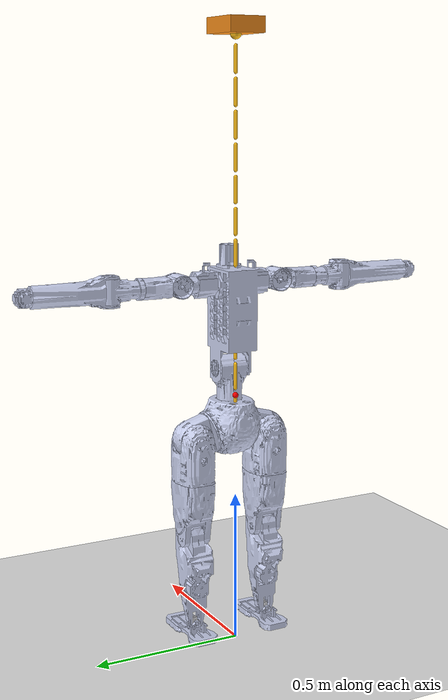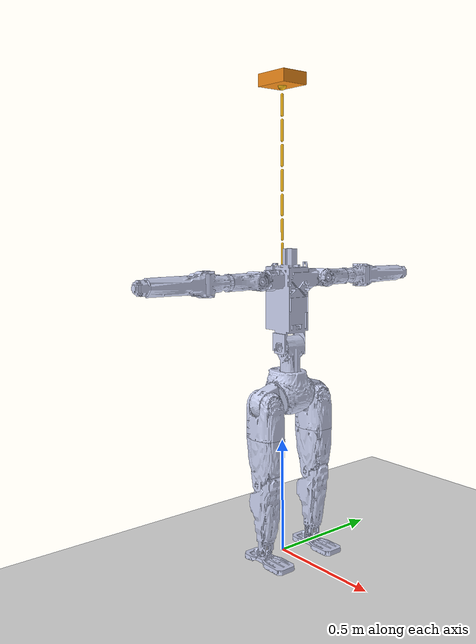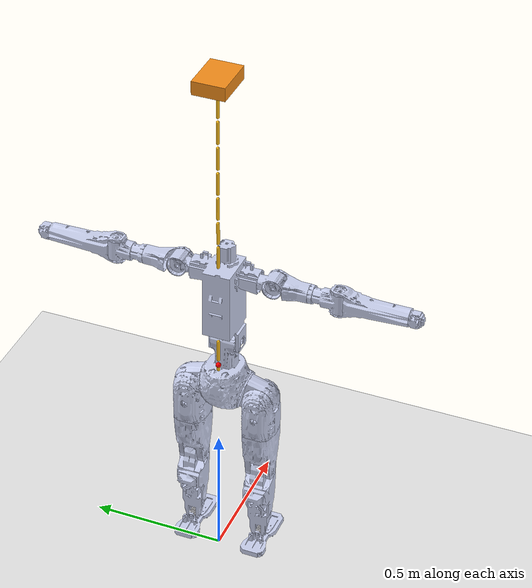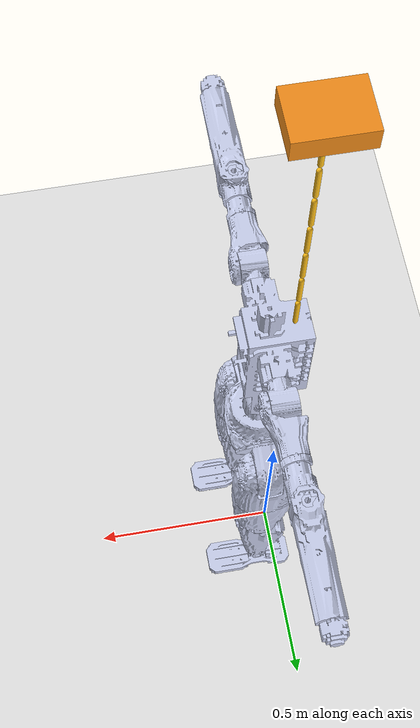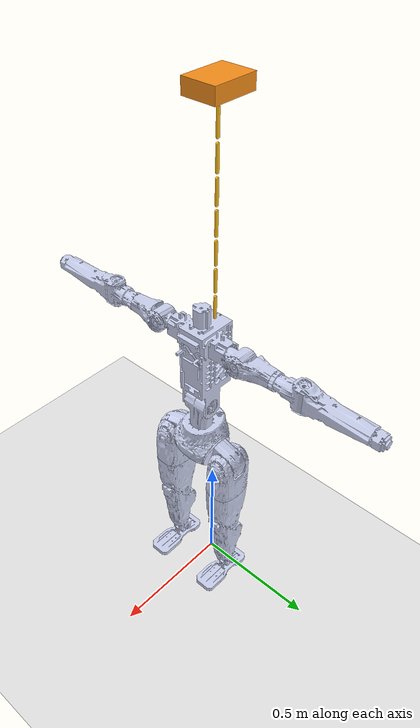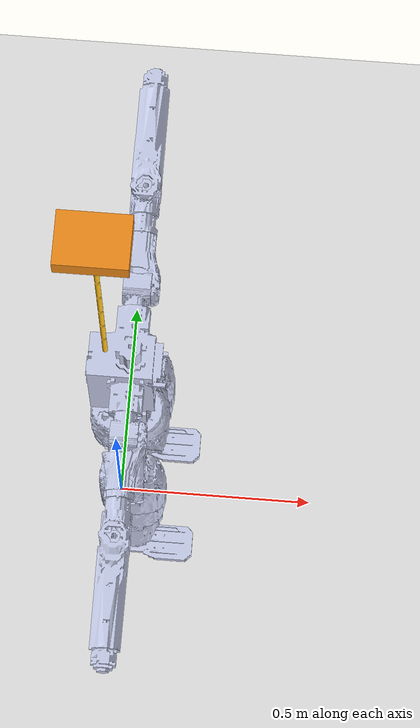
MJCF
<mujoco model="Yidong scene with following safety rope">
    <include file="Yidong_4_29.xml"/>

    <statistic center="0 0 0.9" extent="1.8"/>

    <visual>
        <headlight diffuse="0.6 0.6 0.6" ambient="0.3 0.3 0.3" specular="0 0 0"/>
        <rgba haze="0.15 0.25 0.35 1"/>
        <global azimuth="160" elevation="-20"/>
    </visual>

    <asset>
        <texture type="skybox" builtin="gradient" rgb1="0.3 0.5 0.7" rgb2="0 0 0" width="512" height="3072"/>
        <texture type="2d" name="groundplane" builtin="checker" mark="edge" rgb1="0.2 0.3 0.4" rgb2="0.1 0.2 0.3" markrgb="0.8 0.8 0.8" width="300" height="300"/>
        <material name="groundplane" texture="groundplane" texuniform="true" texrepeat="5 5" reflectance="0.2"/>
    </asset>

    <worldbody>
        <light pos="0 0 3.5" dir="0 0 -1" directional="true"/>
        <!-- The engine keeps this independent trolley above the harness in X/Y. -->
        <body name="safety_trolley" mocap="true" pos="0 0 2.0">
            <geom name="safety_trolley" type="box" size="0.08 0.06 0.025"
                  contype="0" conaffinity="0" rgba="0.95 0.55 0.1 1"/>
            <site name="safety_rope_hook" pos="0 0 -0.025" size="0.018"
                  rgba="1 0.75 0.1 1"/>
        </body>

        <body name="safety_rope_visual_00" mocap="true" pos="0 0 1.9">
            <geom name="safety_rope_visual_geom_00" type="capsule" size="0.006 0.04"
                  contype="0" conaffinity="0" rgba="1 0.75 0.1 1"/>
        </body>
        <body name="safety_rope_visual_01" mocap="true" pos="0 0 1.8">
            <geom name="safety_rope_visual_geom_01" type="capsule" size="0.006 0.04"
                  contype="0" conaffinity="0" rgba="1 0.75 0.1 1"/>
        </body>
        <body name="safety_rope_visual_02" mocap="true" pos="0 0 1.7">
            <geom name="safety_rope_visual_geom_02" type="capsule" size="0.006 0.04"
                  contype="0" conaffinity="0" rgba="1 0.75 0.1 1"/>
        </body>
        <body name="safety_rope_visual_03" mocap="true" pos="0 0 1.6">
            <geom name="safety_rope_visual_geom_03" type="capsule" size="0.006 0.04"
                  contype="0" conaffinity="0" rgba="1 0.75 0.1 1"/>
        </body>
        <body name="safety_rope_visual_04" mocap="true" pos="0 0 1.5">
            <geom name="safety_rope_visual_geom_04" type="capsule" size="0.006 0.04"
                  contype="0" conaffinity="0" rgba="1 0.75 0.1 1"/>
        </body>
        <body name="safety_rope_visual_05" mocap="true" pos="0 0 1.4">
            <geom name="safety_rope_visual_geom_05" type="capsule" size="0.006 0.04"
                  contype="0" conaffinity="0" rgba="1 0.75 0.1 1"/>
        </body>
        <body name="safety_rope_visual_06" mocap="true" pos="0 0 1.3">
            <geom name="safety_rope_visual_geom_06" type="capsule" size="0.006 0.04"
                  contype="0" conaffinity="0" rgba="1 0.75 0.1 1"/>
        </body>
        <body name="safety_rope_visual_07" mocap="true" pos="0 0 1.2">
            <geom name="safety_rope_visual_geom_07" type="capsule" size="0.006 0.04"
                  contype="0" conaffinity="0" rgba="1 0.75 0.1 1"/>
        </body>
        <body name="safety_rope_visual_08" mocap="true" pos="0 0 1.1">
            <geom name="safety_rope_visual_geom_08" type="capsule" size="0.006 0.04"
                  contype="0" conaffinity="0" rgba="1 0.75 0.1 1"/>
        </body>
        <body name="safety_rope_visual_09" mocap="true" pos="0 0 1.0">
            <geom name="safety_rope_visual_geom_09" type="capsule" size="0.006 0.04"
                  contype="0" conaffinity="0" rgba="1 0.75 0.1 1"/>
        </body>
        <body name="safety_rope_visual_10" mocap="true" pos="0 0 0.9">
            <geom name="safety_rope_visual_geom_10" type="capsule" size="0.006 0.04"
                  contype="0" conaffinity="0" rgba="1 0.75 0.1 1"/>
        </body>
        <body name="safety_rope_visual_11" mocap="true" pos="0 0 0.8">
            <geom name="safety_rope_visual_geom_11" type="capsule" size="0.006 0.04"
                  contype="0" conaffinity="0" rgba="1 0.75 0.1 1"/>
        </body>
    </worldbody>

    <!--
      The line is slack in normal standing and becomes load-bearing only after
      the torso descends. The hard upper range remains the final fall arrestor.
    -->
    <tendon>
        <spatial name="safety_rope" limited="true" range="0 1.02"
                 springlength="0 0.92" stiffness="8000" damping="6"
                 solreflimit="0.03 1" width="0.001" rgba="1 0.75 0.1 0">
            <site site="safety_rope_hook"/>
            <site site="safety_harness"/>
        </spatial>
    </tendon>
</mujoco>

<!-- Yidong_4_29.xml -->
<mujoco model="Yidong_4_29">
    <compiler angle="radian" meshdir="../meshes_4_29" autolimits="true" />
    <option>
        <flag contact="enable" energy="disable" warmstart="enable" filterparent="disable" />
    </option>
    <default>
        <default class="Yidong_4_29">
            <default class="visual">
                <geom group="2" type="mesh" contype="0" conaffinity="0" rgba="0.7921568627 0.8196078431 0.9333333333 1" />
            </default>
            <default class="collision">
                <geom group="3" mass="0" density="0" rgba="0.7 0.7 0.7 1" />
            </default>
        </default>
    </default>
    <asset>
        <mesh name="base_link" file="base_link.STL" />
        <mesh name="left_ankle_pitch_link" file="left_ankle_pitch_link.STL" />
        <mesh name="left_ankle_roll_link" file="left_ankle_roll_link.STL" />
        <mesh name="left_elbow_link" file="left_elbow_link.STL" />
        <mesh name="left_hip_pitch_link" file="left_hip_pitch_link.STL" />
        <mesh name="left_hip_roll_link" file="left_hip_roll_link.STL" />
        <mesh name="left_hip_yaw_link" file="left_hip_yaw_link.STL" />
        <mesh name="left_knee_link" file="left_knee_link.STL" />
        <mesh name="left_shoulder_pitch_link" file="left_shoulder_pitch_link.STL" />
        <mesh name="left_shoulder_roll_link" file="left_shoulder_roll_link.STL" />
        <mesh name="left_shoulder_yaw_link" file="left_shoulder_yaw_link.STL" />
        <mesh name="right_ankle_pitch_link" file="right_ankle_pitch_link.STL" />
        <mesh name="right_ankle_roll_link" file="right_ankle_roll_link.STL" />
        <mesh name="right_elbow_link" file="right_elbow_link.STL" />
        <mesh name="right_hip_pitch_link" file="right_hip_pitch_link.STL" />
        <mesh name="right_hip_roll_link" file="right_hip_roll_link.STL" />
        <mesh name="right_hip_yaw_link" file="right_hip_yaw_link.STL" />
        <mesh name="right_knee_link" file="right_knee_link.STL" />
        <mesh name="right_shoulder_pitch_link" file="right_shoulder_pitch_link.STL" />
        <mesh name="right_shoulder_roll_link" file="right_shoulder_roll_link.STL" />
        <mesh name="right_shoulder_yaw_link" file="right_shoulder_yaw_link.STL" />
        <mesh name="waist_pitch_link" file="waist_pitch_link.STL" />
        <mesh name="waist_yaw_link" file="waist_yaw_link.STL" />
    </asset>
    <worldbody>
        <light diffuse=".5 .5 .5" pos="-3 -3 5" dir="3 3 -5" castshadow="true" />
        <geom type="plane" size="10 10 0.1" rgba="0.9 0.9 0.9 1" friction="1 0.005 0.0001" condim="3" />
        <body name="base_link" pos="0 0 0.7865786126">
            <freejoint name="base_free_joint" />
            <inertial pos="0.0523756 -0.00767713 -0.06281451" mass="4.80518702" fullinertia="0.02234027 0.01774012 0.02050618 2.91e-06 0.00077019 -8.68e-06" />
            <geom class="visual" type="mesh" mesh="base_link" rgba="0.792156862745098 0.819607843137255 0.933333333333333 1" />
            <geom class="collision" type="mesh" mesh="base_link" />
            <site name="imu_sensor" pos="0 0 0.05" size="0.01" rgba="1 0 0 1" type="sphere" />
            <body name="left_hip_pitch_link" pos="0.057138 0.059432 -0.07667" quat="0.9914448214 -0.1305264957 0 0">
                <inertial pos="-0.0001845 0.05772748 -0.01525101" mass="1.92926685" fullinertia="0.0042811 0.00308377 0.00336007 1.23e-06 -7.55e-06 8.994e-05" />
                <joint name="left_hip_pitch_joint" type="hinge" axis="0 1 0" range="-2.618 2.618" actuatorfrcrange="-150 150" armature="0.07031" />
                <geom class="visual" type="mesh" mesh="left_hip_pitch_link" rgba="0.792156862745098 0.819607843137255 0.933333333333333 1" />
                <body name="left_hip_roll_link" pos="-0.00020002 0.069862 0" quat="0.9914448214 0.1305264957 0 0">
                    <inertial pos="0.00049843 -0.00049652 -0.08997739" mass="1.86262716" fullinertia="0.00706812 0.00819464 0.00553417 2.38e-06 0.00013723 -6.212e-05" />
                    <joint name="left_hip_roll_joint" type="hinge" axis="1 0 0" range="-0.1746 1.0472" actuatorfrcrange="-54 54" armature="0.0596" />
                    <geom class="visual" type="mesh" mesh="left_hip_roll_link" rgba="0.792156862745098 0.819607843137255 0.933333333333333 1" />
                    <geom class="collision" quat="0.7073882692 0 0.7068251811 0" type="cylinder" size="0.0515 0.08" />
                    <body name="left_hip_yaw_link" pos="0 0 -0.140326859">
                        <inertial pos="0.00342726 0.00239287 -0.08426599" mass="3.26346288" fullinertia="0.01109372 0.01325534 0.00728037 5.17e-05 0.0002837 -1.633e-05" />
                        <joint name="left_hip_yaw_joint" type="hinge" axis="0 0 -1" range="-2.3562 0.0873" actuatorfrcrange="-60 60" armature="0.0389" />
                        <geom class="visual" type="mesh" mesh="left_hip_yaw_link" rgba="0.792156862745098 0.819607843137255 0.933333333333333 1" />
                        <geom class="collision" pos="0 0 -0.03" type="cylinder" size="0.075 0.09" />
                        <body name="left_knee_link" pos="0 -0.0002000008004 -0.1955000003">
                            <inertial pos="0.00097313 -0.00089271 -0.12703472" mass="2.57245412" fullinertia="0.0186542 0.01923614 0.00318444 4.121e-05 -0.00099764 8.416e-05" />
                            <joint name="left_knee_joint" type="hinge" axis="0 -1 0" range="-1.4835 0.0873" actuatorfrcrange="-150 150" armature="0.07031" />
                            <geom class="visual" type="mesh" mesh="left_knee_link" rgba="0.792156862745098 0.819607843137255 0.933333333333333 1" />
                            <geom class="collision" pos="0 0 -0.12" type="cylinder" size="0.055 0.1" />
                            <body name="left_ankle_pitch_link" pos="-0.003432400265 0 -0.3019999949">
                                <inertial pos="0 0 0.00345541" mass="0.02350576" fullinertia="2.72e-06 2.59e-06 2.48e-06 0 0 0" />
                                <joint name="left_ankle_pitch_joint" type="hinge" axis="0 1 0" range="-0.7854 0.7854" actuatorfrcrange="-45 45" armature="0.0331" />
                                <geom class="visual" type="mesh" mesh="left_ankle_pitch_link" rgba="0.890196078431372 0.890196078431372 0.913725490196078 1" />
                                <body name="left_ankle_roll_link" pos="0 0 0">
                                    <inertial pos="0.02280077 0 -0.02744358" mass="0.63371843" fullinertia="0.00040865 0.00305185 0.00330558 0 7.754e-05 0" />
                                    <joint name="left_ankle_roll_joint" type="hinge" axis="1 0 0" range="-0.7854 0.7854" actuatorfrcrange="-45 45" armature="0.0331" />
                                    <geom class="visual" type="mesh" mesh="left_ankle_roll_link" rgba="0.792156862745098 0.819607843137255 0.933333333333333 1" />
                                    <geom class="collision" pos="0 0.035 -0.035" quat="0.707140837 0 0.7070727237 0" type="cylinder" size="0.0025 0.09" />
                                    <geom class="collision" pos="0.03 0 -0.035" type="box" size="0.125 0.045 0.009" />
                                    <geom class="collision" pos="0 -0.035 -0.035" quat="0.707140837 0 0.7070727237 0" type="cylinder" size="0.0025 0.09" />
                                </body>
                            </body>
                        </body>
                    </body>
                </body>
            </body>
            <body name="right_hip_pitch_link" pos="0.057138 -0.074832 -0.07667" quat="0.9914448214 0.1305264957 0 0">
                <inertial pos="-0.00018451 -0.05772862 -0.01524735" mass="1.92926647" fullinertia="0.00428108 0.00308363 0.00336022 -1.33e-06 -7.19e-06 -8.971e-05" />
                <joint name="right_hip_pitch_joint" type="hinge" axis="0 -1 0" range="-2.618 2.618" actuatorfrcrange="-150 150" armature="0.07031" />
                <geom class="visual" type="mesh" mesh="right_hip_pitch_link" rgba="0.792156862745098 0.819607843137255 0.933333333333333 1" />
                <body name="right_hip_roll_link" pos="-0.0002000315905 -0.06986228427 0" quat="0.9914448614 -0.1305261922 0 0">
                    <inertial pos="0.00049581 0.00048739 -0.08996829" mass="1.86254014" fullinertia="0.00706875 0.00819597 0.00553392 -3.21e-06 0.00013678 6.152e-05" />
                    <joint name="right_hip_roll_joint" type="hinge" axis="1 0 0" range="-1.0472 0.1746" actuatorfrcrange="-54 54" armature="0.0596" />
                    <geom class="visual" type="mesh" mesh="right_hip_roll_link" rgba="0.792156862745098 0.819607843137255 0.933333333333333 1" />
                    <geom class="collision" quat="0.7073882692 0 0.7068251811 0" type="cylinder" size="0.0515 0.08" />
                    <body name="right_hip_yaw_link" pos="0 0 -0.140326859">
                        <inertial pos="0.00335906 -0.00238592 -0.08426244" mass="3.26643255" fullinertia="0.01107981 0.01325081 0.00728947 -4.871e-05 0.00027924 1.037e-05" />
                        <joint name="right_hip_yaw_joint" type="hinge" axis="0 0 -1" range="-0.0873 2.3562" actuatorfrcrange="-60 60" armature="0.0389" />
                        <geom class="visual" type="mesh" mesh="right_hip_yaw_link" rgba="0.792156862745098 0.819607843137255 0.933333333333333 1" />
                        <geom class="collision" pos="0 0 -0.03" type="cylinder" size="0.075 0.09" />
                        <body name="right_knee_link" pos="0 0.0002000008094 -0.1955000003">
                            <inertial pos="0.00096386 0.00088893 -0.12703271" mass="2.57229366" fullinertia="0.01865346 0.01923683 0.00318608 -4.039e-05 -0.00100034 -8.803e-05" />
                            <joint name="right_knee_joint" type="hinge" axis="0 1 0" range="-0.0873 1.4875" actuatorfrcrange="-150 150" armature="0.07031" />
                            <geom class="visual" type="mesh" mesh="right_knee_link" rgba="0.792156862745098 0.819607843137255 0.933333333333333 1" />
                            <geom class="collision" pos="0 0 -0.12" type="cylinder" size="0.055 0.1" />
                            <body name="right_ankle_pitch_link" pos="-0.003432403009 0 -0.3019999949">
                                <inertial pos="0 0 0.00345541" mass="0.02350576" fullinertia="2.72e-06 2.59e-06 2.48e-06 0 0 0" />
                                <joint name="right_ankle_pitch_joint" type="hinge" axis="0 -1 0" range="-0.7854 0.7854" actuatorfrcrange="-45 45" armature="0.0331" />
                                <geom class="visual" type="mesh" mesh="right_ankle_pitch_link" rgba="0.890196078431372 0.890196078431372 0.913725490196078 1" />
                                <body name="right_ankle_roll_link" pos="0 0 0">
                                    <inertial pos="0.02280077 0 -0.02744358" mass="0.63371843" fullinertia="0.00040865 0.00305185 0.00330558 0 7.754e-05 0" />
                                    <joint name="right_ankle_roll_joint" type="hinge" axis="1 0 0" range="-0.7854 0.7854" actuatorfrcrange="-45 45" armature="0.0331" />
                                    <geom class="visual" type="mesh" mesh="right_ankle_roll_link" rgba="0.792156862745098 0.819607843137255 0.933333333333333 1" />
                                    <geom class="collision" pos="0 0.035 -0.035" quat="0.707140837 0 0.7070727237 0" type="cylinder" size="0.0025 0.09" />
                                    <geom class="collision" pos="0.03 0 -0.035" type="box" size="0.125 0.045 0.009" />
                                    <geom class="collision" pos="0 -0.035 -0.035" quat="0.707140837 0 0.7070727237 0" type="cylinder" size="0.0025 0.09" />
                                </body>
                            </body>
                        </body>
                    </body>
                </body>
            </body>
            <body name="waist_yaw_link" pos="0.057138 -0.0077001 0.013343">
                <inertial pos="-0.00010856 0.00343397 0.08389173" mass="2.80055203" fullinertia="0.00741596 0.00684582 0.00311668 -4.72e-06 6.24e-06 -0.00031661" />
                <joint name="waist_yaw_joint" type="hinge" axis="0 0 1" range="-2.618 2.618" actuatorfrcrange="-42 42" armature="0.118" />
                <geom class="visual" type="mesh" mesh="waist_yaw_link" rgba="0.792156862745098 0.819607843137255 0.933333333333333 1" />
                <geom class="collision" pos="0 0 0.05" type="cylinder" size="0.045 0.0175" />
                <body name="waist_pitch_link" pos="0 0 0.12017">
                    <inertial pos="-0.01726977 0.00598606 0.20869216" mass="10.08901266" fullinertia="0.12468534 0.11195944 0.05328327 0.00071208 -0.00400686 0.00375507" />
                    <joint name="waist_pitch_joint" type="hinge" axis="0 1 0" range="-0.524 0.524" actuatorfrcrange="-42 42" armature="0.118" />
                    <geom class="visual" type="mesh" mesh="waist_pitch_link" rgba="0.792156862745098 0.819607843137255 0.933333333333333 1" />
                    <geom class="collision" pos="0 -0 0.2" type="cylinder" size="0.12 0.11" />
                    <!-- Inert attachment point used by the safety-rope scene. -->
                    <site name="safety_harness" pos="0 0 0.20" size="0.018"
                          rgba="1 0.75 0.1 1"/>
                    <body name="left_shoulder_pitch_link" pos="0 0.1241 0.278">
                        <inertial pos="0.00806619 0.05126733 -0.00010721" mass="0.75123944" fullinertia="0.00056781 0.0004916 0.00057179 -1.824e-05 -1.64e-06 1.3e-07" />
                        <joint name="left_shoulder_pitch_joint" type="hinge" axis="0 1 0" range="-2.8798 2.3562" actuatorfrcrange="-23 23" armature="0.0442" />
                        <geom class="visual" type="mesh" mesh="left_shoulder_pitch_link" rgba="0.792156862745098 0.819607843137255 0.933333333333333 1" />
                        <geom class="collision" pos="0 0.055 0" quat="0.707140837 0 0.7070727237 0" type="cylinder" size="0.035 0.045" />
                        <body name="left_shoulder_roll_link" pos="0 0.055 0">
                            <inertial pos="0.00522392 0.082999 -4.5e-05" mass="0.72946277" fullinertia="0.00117118 0.00057615 0.00130132 0.0003053 2e-08 -4.9e-07" />
                            <joint name="left_shoulder_roll_joint" type="hinge" axis="1 0 0" range="-1.4486 1.5708" actuatorfrcrange="-23 23" armature="0.044217" />
                            <geom class="visual" type="mesh" mesh="left_shoulder_roll_link" rgba="0.792156862745098 0.819607843137255 0.933333333333333 1" />
                            <geom class="collision" pos="-0 0.086 0" quat="0.707140837 0.7070727237 0 0" type="cylinder" size="0.035 0.04" />
                            <body name="left_shoulder_yaw_link" pos="0 0.1264999999 0">
                                <inertial pos="1.557e-05 0.08460296 0.00416775" mass="1.07090428" fullinertia="0.00211806 0.00075853 0.00206661 -3.4e-07 6e-07 -0.00012646" />
                                <joint name="left_shoulder_yaw_joint" type="hinge" axis="0 1 0" range="-3.1416 3.1416" actuatorfrcrange="-8.3 8.3" armature="0.02213451" />
                                <geom class="visual" type="mesh" mesh="left_shoulder_yaw_link" rgba="0.792156862745098 0.819607843137255 0.933333333333333 1" />
                                <geom class="collision" pos="0 0.032 0" quat="0.707140837 0.7070727237 0 0" type="cylinder" size="0.035 0.02" />
                                <body name="left_elbow_link" pos="0 0.1133 0">
                                    <inertial pos="-3.42e-06 0.14736042 0.00125015" mass="0.81076435" fullinertia="0.00699365 0.00086609 0.00680462 -5.5e-07 2.2e-07 0.00014396" />
                                    <joint name="left_elbow_joint" type="hinge" axis="0 0 -1" range="-0.8727 2.3562" actuatorfrcrange="-8.3 8.3" armature="0.02213451" />
                                    <geom class="visual" type="mesh" mesh="left_elbow_link" rgba="0.792156862745098 0.819607843137255 0.933333333333333 1" />
                                    <geom class="collision" pos="0 0.135 -0" quat="0.707140837 0.7070727237 0 0" type="cylinder" size="0.035 0.14" />
                                </body>
                            </body>
                        </body>
                    </body>
                    <body name="right_shoulder_pitch_link" pos="0 -0.1241 0.278">
                        <inertial pos="0.0080589 -0.05099535 -0.00015654" mass="0.75909711" fullinertia="0.00057839 0.0004998 0.00058076 2.271e-05 -2.66e-06 -3.2e-07" />
                        <joint name="right_shoulder_pitch_joint" type="hinge" axis="0 -1 0" range="-2.3562 2.8798" actuatorfrcrange="-23 23" armature="0.0442" />
                        <geom class="visual" type="mesh" mesh="right_shoulder_pitch_link" rgba="0.792156862745098 0.819607843137255 0.933333333333333 1" />
                        <geom class="collision" pos="0 -0.055 0" quat="0.707140837 0 0.7070727237 0" type="cylinder" size="0.035 0.045" />
                        <body name="right_shoulder_roll_link" pos="0 -0.055 0">
                            <inertial pos="0.00522392 -0.082999 -4.5e-05" mass="0.72946277" fullinertia="0.00117118 0.00057615 0.00130132 -0.0003053 2e-08 4.9e-07" />
                            <joint name="right_shoulder_roll_joint" type="hinge" axis="1 0 0" range="-1.5708 1.4486" actuatorfrcrange="-23 23" armature="0.044217" />
                            <geom class="visual" type="mesh" mesh="right_shoulder_roll_link" rgba="0.792156862745098 0.819607843137255 0.933333333333333 1" />
                            <geom class="collision" pos="0 -0.086 0" quat="0.707140837 0.7070727237 0 0" type="cylinder" size="0.035 0.04" />
                            <body name="right_shoulder_yaw_link" pos="0 -0.1264999999 0">
                                <inertial pos="2.932e-05 -0.08456886 0.00416783" mass="1.07089261" fullinertia="0.00211743 0.00075969 0.00206709 2.4e-07 1.01e-06 0.00012715" />
                                <joint name="right_shoulder_yaw_joint" type="hinge" axis="0 -1 0" range="-3.1416 3.1416" actuatorfrcrange="-8.3 8.3" armature="0.02213451" />
                                <geom class="visual" type="mesh" mesh="right_shoulder_yaw_link" rgba="0.792156862745098 0.819607843137255 0.933333333333333 1" />
                                <geom class="collision" pos="0 -0.032 0" quat="0.707140837 0.7070727237 0 0" type="cylinder" size="0.035 0.02" />
                                <body name="right_elbow_link" pos="0 -0.1133 0">
                                    <inertial pos="-4.24e-06 -0.14735405 0.00124828" mass="0.81080821" fullinertia="0.00699436 0.00086618 0.00680523 6.3e-07 1.8e-07 -0.00014379" />
                                    <joint name="right_elbow_joint" type="hinge" axis="0 0 -1" range="-2.3562 0.8727" actuatorfrcrange="-8.3 8.3" armature="0.02213451" />
                                    <geom class="visual" type="mesh" mesh="right_elbow_link" rgba="0.792156862745098 0.819607843137255 0.933333333333333 1" />
                                    <geom class="collision" pos="0 -0.135 0" quat="0.707140837 0.7070727237 0 0" type="cylinder" size="0.035 0.14" />
                                </body>
                            </body>
                        </body>
                    </body>
                </body>
            </body>
        </body>
    </worldbody>
    <actuator>
        <general name="left_hip_pitch_joint" joint="left_hip_pitch_joint" ctrllimited="true" ctrlrange="-150 150" />
        <general name="left_hip_roll_joint" joint="left_hip_roll_joint" ctrllimited="true" ctrlrange="-54 54" />
        <general name="left_hip_yaw_joint" joint="left_hip_yaw_joint" ctrllimited="true" ctrlrange="-60 60" />
        <general name="left_knee_joint" joint="left_knee_joint" ctrllimited="true" ctrlrange="-150 150" />
        <general name="left_ankle_pitch_joint" joint="left_ankle_pitch_joint" ctrllimited="true" ctrlrange="-45 45" />
        <general name="left_ankle_roll_joint" joint="left_ankle_roll_joint" ctrllimited="true" ctrlrange="-45 45" />
        <general name="right_hip_pitch_joint" joint="right_hip_pitch_joint" ctrllimited="true" ctrlrange="-150 150" />
        <general name="right_hip_roll_joint" joint="right_hip_roll_joint" ctrllimited="true" ctrlrange="-54 54" />
        <general name="right_hip_yaw_joint" joint="right_hip_yaw_joint" ctrllimited="true" ctrlrange="-60 60" />
        <general name="right_knee_joint" joint="right_knee_joint" ctrllimited="true" ctrlrange="-150 150" />
        <general name="right_ankle_pitch_joint" joint="right_ankle_pitch_joint" ctrllimited="true" ctrlrange="-45 45" />
        <general name="right_ankle_roll_joint" joint="right_ankle_roll_joint" ctrllimited="true" ctrlrange="-45 45" />
        <general name="waist_yaw_joint" joint="waist_yaw_joint" ctrllimited="true" ctrlrange="-42 42" />
        <general name="waist_pitch_joint" joint="waist_pitch_joint" ctrllimited="true" ctrlrange="-42 42" />
        <general name="left_shoulder_pitch_joint" joint="left_shoulder_pitch_joint" ctrllimited="true" ctrlrange="-23 23" />
        <general name="left_shoulder_roll_joint" joint="left_shoulder_roll_joint" ctrllimited="true" ctrlrange="-23 23" />
        <general name="left_shoulder_yaw_joint" joint="left_shoulder_yaw_joint" ctrllimited="true" ctrlrange="-8.3 8.3" />
        <general name="left_elbow_joint" joint="left_elbow_joint" ctrllimited="true" ctrlrange="-8.3 8.3" />
        <general name="right_shoulder_pitch_joint" joint="right_shoulder_pitch_joint" ctrllimited="true" ctrlrange="-23 23" />
        <general name="right_shoulder_roll_joint" joint="right_shoulder_roll_joint" ctrllimited="true" ctrlrange="-23 23" />
        <general name="right_shoulder_yaw_joint" joint="right_shoulder_yaw_joint" ctrllimited="true" ctrlrange="-8.3 8.3" />
        <general name="right_elbow_joint" joint="right_elbow_joint" ctrllimited="true" ctrlrange="-8.3 8.3" />
    </actuator>
    <sensor>
        <framequat name="orientation" objtype="site" objname="imu_sensor" />
        <gyro name="angular-velocity" site="imu_sensor" cutoff="34.9" />
        <accelerometer name="linear-acceleration" site="imu_sensor" cutoff="157" />
    </sensor>
</mujoco>
